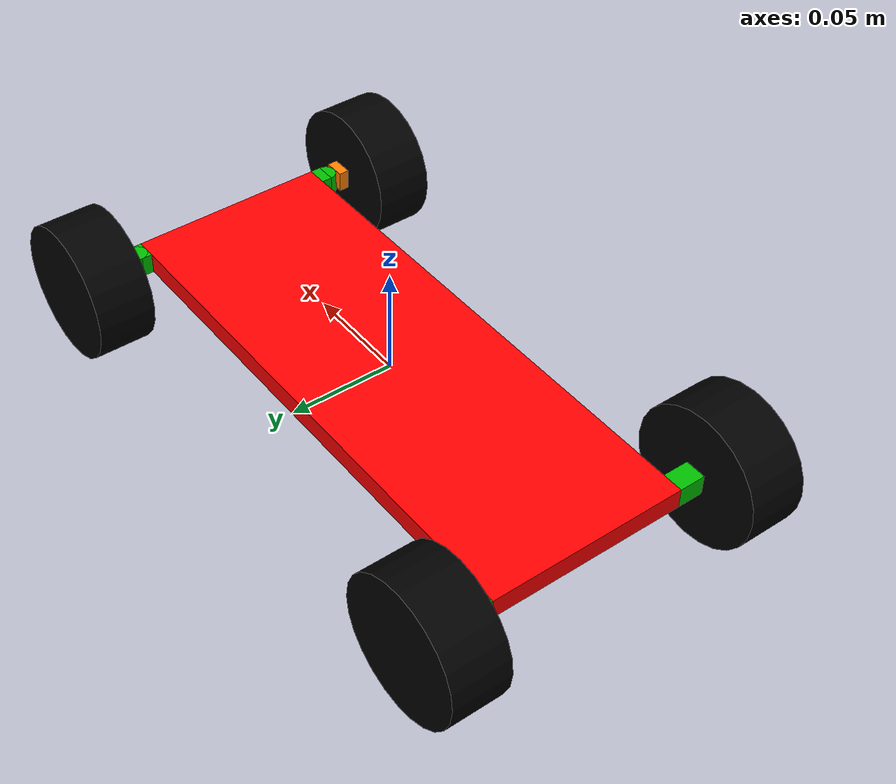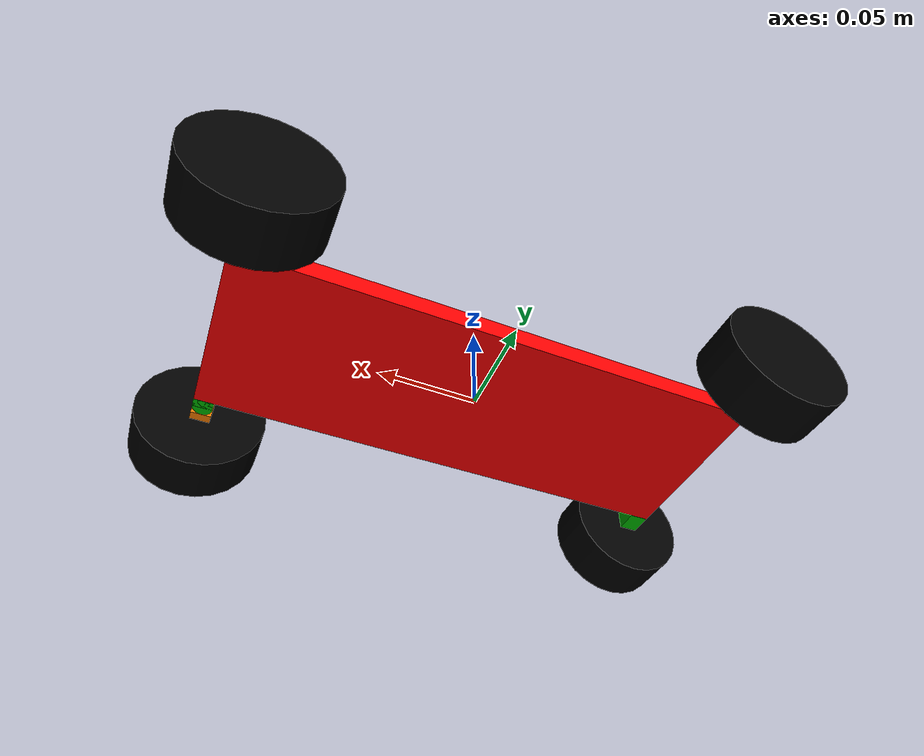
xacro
<?xml version="1.0"?>

<robot xmlns:xacro="http://www.ros.org/wiki/xacro" name="simple_ackermann" >

	<xacro:include filename="$(find ackermanndrive)/xacro/simple_ackermann_rear_wheel.xacro"/>
	<xacro:include filename="$(find ackermanndrive)/xacro/simple_ackermann_front_wheel.xacro"/>
	<xacro:include filename="$(find ackermanndrive)/xacro/simple_ackermann_plugin.xacro"/>

	<xacro:property name="height" value="0.01" />
	<xacro:property name="wheelbase" value="0.26" />
	<xacro:property name="track" value="0.1525" />
	<xacro:property name="wheeldiameter" value="0.065" />
	<!--xacro:property name="wheelwidth" value="0.001" /-->
	<xacro:property name="wheelwidth" value="0.0275" />

	<xacro:macro name="box_inertial" params="x y z mass">
		<inertial>
			<mass value="${mass}" />
			<origin xyz="0 0 0" />
			<inertia
				ixx="${0.0833333 * mass * (y*y + z*z)}" ixy="0.0" ixz="0.0"
				iyy="${0.0833333 * mass * (x*x + z*z)}" iyz="0.0"
				izz="${0.0833333 * mass * (x*x + y*y)}" />
		</inertial>
	</xacro:macro>

	<link name="base_link">
		<visual name="chassis_visual">
			<origin xyz="0.0 0.0 0.0" rpy="0.0 0.0 0.0"/>
			<geometry name="base_link_geomety">
				<box size="${wheelbase} ${track-wheelwidth-(3*height)} ${height}"/>
			</geometry>
			<material name="red">
				<color rgba="1.0 0.0 0.0 1.0"/>
			</material>
		</visual>
		<collision>
			<origin xyz="0.0 0.0 0.0" rpy="0.0 0.0 0.0"/>
			<geometry name="base_link_geomety">
				<box size="${wheelbase} ${track-wheelwidth-(3*height)} ${height}"/>
			</geometry>
		</collision>
		<xacro:box_inertial x="${wheelbase}" y="${track-wheelwidth-(3*height)}" z="${height}" mass="1.0" />
	</link>
	<gazebo reference="base_link">
		<material value="Gazebo/Red"/>
	</gazebo>

	<xacro:rear_wheel side="left" reflect="1.0" height="${height}" wheelbase="${wheelbase}" track="${track}" wheeldiameter="${wheeldiameter}" wheelwidth="${wheelwidth}"/>
	<xacro:rear_wheel side="right" reflect="-1.0" height="${height}" wheelbase="${wheelbase}" track="${track}" wheeldiameter="${wheeldiameter}" wheelwidth="${wheelwidth}"/>
	<xacro:front_wheel side="left" reflect="1.0" height="${height}" wheelbase="${wheelbase}" track="${track}" wheeldiameter="${wheeldiameter}" wheelwidth="${wheelwidth}"/>
	<xacro:front_wheel side="right" reflect="-1.0" height="${height}" wheelbase="${wheelbase}" track="${track}" wheeldiameter="${wheeldiameter}" wheelwidth="${wheelwidth}"/>

	<xacro:ackermanndrive_plugin/>

</robot>

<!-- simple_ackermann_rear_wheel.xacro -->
<robot xmlns:xacro="http://www.ros.org/wiki/xacro" name="simple_ackermann" >

	<xacro:macro name="default_inertial" params="mass">
		<inertial>
			<mass value="${mass}" />
			<inertia ixx="1.0" ixy="0.0" ixz="0.0" iyy="1.0" iyz="0.0" izz="1.0" />
		</inertial>
	</xacro:macro>

	<xacro:macro name="cylinder_inertial" params="radius length mass">
		<inertial>
			<mass value="${mass}" />
			<origin xyz="0 0 0" />
			<inertia
				ixx="${0.0833333 * mass * (3 * radius * radius + length * length)}" ixy="0.0" ixz="0.0"
				iyy="${0.0833333 * mass * (3 * radius * radius + length * length)}" iyz="0.0"
				izz="${0.5 * mass * radius * radius}" />
		</inertial>
	</xacro:macro>

	<xacro:macro name="cylinder_inertial_wheels" params="radius length mass">
		<inertial>
			<mass value="${mass}" />
			<origin xyz="0.0 ${reflect*wheelwidth/2} 0.0" rpy="${pi/2} 0.0 0.0"/>
			<inertia
				ixx="${0.0833333 * mass * (3 * radius * radius + length * length)}" ixy="0.0" ixz="0.0"
				iyy="${0.0833333 * mass * (3 * radius * radius + length * length)}" iyz="0.0"
				izz="${0.5 * mass * radius * radius}" />
		</inertial>
	</xacro:macro>

	<xacro:macro name="box_inertial" params="x y z mass">
		<inertial>
			<mass value="${mass}" />
			<origin xyz="0 0 0" />
			<inertia
				ixx="${0.0833333 * mass * (y*y + z*z)}" ixy="0.0" ixz="0.0"
				iyy="${0.0833333 * mass * (x*x + z*z)}" iyz="0.0"
				izz="${0.0833333 * mass * (x*x + y*y)}" />
		</inertial>
	</xacro:macro>

	<xacro:macro name="rear_wheel" params="side reflect height wheelbase track wheeldiameter wheelwidth">

		<joint name="base_link_to_${side}_rear_wheelmount" type="fixed">
			<origin xyz="${-(wheelbase/2-height/2)} ${reflect*(track-wheelwidth-3*height/2)/2} 0.0" rpy="0.0 0.0 0.0"/>
			<parent link="base_link"/>
			<child link="${side}_rear_wheelmount"/>
		</joint>

		<link name="${side}_rear_wheelmount">
			<visual>
				<origin xyz="0.0 0.0 0.0" rpy="0.0 0.0 0.0"/>
				<geometry name="wheelmount_geometry">
					<box size="${height} ${3*height/2} ${height}" />
				</geometry>
				<material name="green">
					<color rgba="0.0 0.75 0.0 1.0"/>
				</material>
			</visual>
			<collision>
				<origin xyz="0.0 0.0 0.0" rpy="0.0 0.0 0.0"/>
				<geometry name="wheelmount_geometry">
					<box size="${height} ${3*height/2} ${height}" />
				</geometry>
			</collision>
		<xacro:box_inertial x="${height}" y="${3*height/2}" z ="${height}" mass="0.015"/>
		</link>
		<gazebo reference="${side}_rear_wheelmount">
			<material value="Gazebo/Red"/>
		</gazebo>

		<joint name="${side}_rear_wheel_to_mount" type="continuous">
			<axis xyz="0.0 1.0 0.0"/>
			<origin xyz="0.0 ${reflect*height/2} 0.0" rpy="0.0 0.0 0.0"/>
			<parent link="${side}_rear_wheelmount"/>
			<child link="${side}_rear_wheel"/>
		</joint>

		<link name="${side}_rear_wheel">
			<visual>
				<origin xyz="0.0 ${reflect*wheelwidth/2} 0.0" rpy="${pi/2} 0.0 0.0"/>
				<geometry name="wheel_geom">
					<cylinder radius="${wheeldiameter/2}" length="${wheelwidth}" />
				</geometry>
				<material name="black">
					<color rgba="0.0 0.0 0.0 1.0"/>
				</material>
			</visual>
			<collision>
				<origin xyz="0.0 ${reflect*wheelwidth/2} 0.0" rpy="${pi/2} 0.0 0.0"/>
				<geometry name="wheel_geom">
					<cylinder radius="${wheeldiameter/2}" length="${wheelwidth}" />
				</geometry>
			</collision>
			<xacro:cylinder_inertial_wheels radius="${wheeldiameter/2}" length="${wheelwidth}" mass="0.01"/>
		</link>
		<gazebo reference="${side}_rear_wheel">
			<mu1>10.0</mu1>
			<mu2>10.0</mu2>
			<kp>1000000.0</kp>
			<kd>10.0</kd>
			<material value="Gazebo/Black"/>
		</gazebo>
	</xacro:macro>

</robot>

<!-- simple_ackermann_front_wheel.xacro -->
<robot xmlns:xacro="http://www.ros.org/wiki/xacro">

	<xacro:macro name="default_inertial" params="mass">
		<inertial>
			<mass value="${mass}" />
			<inertia ixx="0.001" ixy="0.0" ixz="0.0" iyy="0.001" iyz="0.0" izz="0.001" />
		</inertial>
	</xacro:macro>

	<xacro:macro name="cylinder_inertial" params="radius length mass">
		<inertial>
			<mass value="${mass}" />
			<origin xyz="0.0 0.0 0.0" rpy="0.0 0.0 0.0"/>
			<inertia
				ixx="${0.0833333 * mass * (3 * radius * radius + length * length)}" ixy="0.0" ixz="0.0"
				iyy="${0.0833333 * mass * (3 * radius * radius + length * length)}" iyz="0.0"
				izz="${0.5 * mass * radius * radius}" />
		</inertial>
	</xacro:macro>

	<xacro:macro name="cylinder_inertial_wheels" params="radius length mass">
		<inertial>
			<mass value="${mass}" />
			<origin xyz="0.0 ${reflect*wheelwidth/2} 0.0" rpy="${pi/2} 0.0 0.0"/>
			<inertia
				ixx="${0.0833333 * mass * (3 * radius * radius + length * length)}" ixy="0.0" ixz="0.0"
				iyy="${0.0833333 * mass * (3 * radius * radius + length * length)}" iyz="0.0"
				izz="${0.5 * mass * radius * radius}" />
		</inertial>
	</xacro:macro>

	<xacro:macro name="box_inertial" params="x y z mass">
		<inertial>
			<mass value="${mass}" />
			<origin xyz="0 0 0" />
			<inertia
				ixx="${0.0833333 * mass * (y*y + z*z)}" ixy="0.0" ixz="0.0"
				iyy="${0.0833333 * mass * (x*x + z*z)}" iyz="0.0"
				izz="${0.0833333 * mass * (x*x + y*y)}" />
		</inertial>
	</xacro:macro>

	<xacro:macro name="box_inertial_kingpin" params="x y z mass">
		<inertial>
			<mass value="${mass}" />
			<origin xyz="0.0 ${reflect*3*height/4} 0.0" rpy="0.0 0.0 0.0"/>
			<inertia
				ixx="${0.0833333 * mass * (y*y + z*z)}" ixy="0.0" ixz="0.0"
				iyy="${0.0833333 * mass * (x*x + z*z)}" iyz="0.0"
				izz="${0.0833333 * mass * (x*x + y*y)}" />
		</inertial>
	</xacro:macro>

	<xacro:macro name="cylinder_inertial_with_origin" params="radius length mass *origin">
		<inertial>
			<mass value="${mass}" />
			<xacro:insert_block name="origin" />
			<inertia
				ixx="${0.0833333 * mass * (3 * radius * radius + length * length)}" ixy="0.0" ixz="0.0"
				iyy="${0.0833333 * mass * (3 * radius * radius + length * length)}" iyz="0.0"
				izz="${0.5 * mass * radius * radius}" />
		</inertial>
	</xacro:macro>

	<xacro:macro name="box_inertial_with_origin" params="x y z mass *origin">
		<inertial>
			<mass value="${mass}" />
			<xacro:insert_block name="origin" />
			<inertia
				ixx="${0.0833333 * mass * (y*y + z*z)}" ixy="0.0" ixz="0.0"
				iyy="${0.0833333 * mass * (x*x + z*z)}" iyz="0.0"
				izz="${0.0833333 * mass * (x*x + y*y)}" />
		</inertial>
	</xacro:macro>

	<xacro:macro name="front_wheel" params="side reflect height wheelbase track wheeldiameter wheelwidth">

		<joint name="base_link_to_${side}_front_wheelmount_box" type="fixed">
			<origin xyz="${(wheelbase/2-height/2)} ${reflect*(track-wheelwidth-5*height/2)/2} 0.0" rpy="0.0 0.0 0.0"/>
			<parent link="base_link"/>
			<child link="${side}_front_wheelmount_box"/>
		</joint>

		<link name="${side}_front_wheelmount_box">
			<visual>
				<origin xyz="0.0 0.0 0.0" rpy="0.0 0.0 0.0"/>
				<geometry name="wheelmount_geometry">
					<box size="${height} ${height/2} ${height}" />
				</geometry>
				<material name="green">
					<color rgba="0.0 0.75 0.0 1.0"/>
				</material>
			</visual>
			<collision>
				<origin xyz="0.0 0.0 0.0" rpy="0.0 0.0 0.0"/>
				<geometry name="wheelmount_geometry">
					<box size="${height} ${height/2} ${height}" />
				</geometry>
			</collision>
			<xacro:box_inertial x="${height}" y="${height/2}" z="${height}" mass="0.005"/>
		</link>
		<gazebo reference="${side}_front_wheelmount_box">
			<material value="Gazebo/Red"/>
		</gazebo>

		<joint name="${side}_front_wheelmount_box_to_${side}_front_wheelmount_cylinder" type="fixed">
			<origin xyz="0.0 ${reflect*height/4} 0.0" rpy="0.0 0.0 0.0"/>
			<parent link="${side}_front_wheelmount_box"/>
			<child link="${side}_front_wheelmount_cylinder"/>
		</joint>

		<link name="${side}_front_wheelmount_cylinder">
			<visual>
				<origin xyz="0.0 0.0 0.0" rpy="0.0 0.0 0.0"/>
				<geometry name="wheelmount_geometry">
					<cylinder radius="${height/2}" length="${height}" />
				</geometry>
				<material name="green">
					<color rgba="0.0 0.75 0.0 1.0"/>
				</material>
			</visual>
			<collision>
				<origin xyz="0.0 0.0 0.0" rpy="0.0 0.0 0.0"/>
				<geometry name="wheelmount_geometry">
					<cylinder radius="${height/2}" length="${height}" />
				</geometry>
			</collision>
			<xacro:cylinder_inertial radius="${height/2}" length="${height}" mass="0.005"/>
		</link>
		<gazebo reference="${side}_front_wheelmount_cylinder">
			<material value="Gazebo/Red"/>
		</gazebo>

		<joint name="${side}_front_wheelmount_cylinder_to_${side}_kingpin" type="revolute">
		  	<axis xyz="0.0 0.0 1.0"/>
		  	<origin rpy="0.0 0.0 0.0" xyz="0.0 0.0 0.0"/>
			<parent link="${side}_front_wheelmount_cylinder"/>
			<child link="${side}_kingpin"/>
			<limit lower="-0.41" upper="0.41" effort="100" velocity="100"/>
			<joint_properties damping="1.0" friction="0.0"/>
		</joint>
		<gazebo reference="${side}_front_wheelmount_cylinder_to_${side}_kingpin">
		</gazebo>

		<link name="${side}_kingpin">
			<visual>
				<origin xyz="0.0 ${reflect*3*height/4} 0.0" rpy="0.0 0.0 0.0"/>
				<geometry name="kingpin_geometry">
					<box size="${height} ${height/2} ${height}" />
				</geometry>
				<material name="orange">
					<color rgba="1.0 0.5 0.0 1.0"/>
				</material>
			</visual>
			<collision>
				<origin xyz="0.0 ${reflect*3*height/4} 0.0" rpy="0.0 0.0 0.0"/>
				<geometry name="kingpin_geometry">
					<box size="${height} ${height/2} ${height}" />
				</geometry>
			</collision>
			<xacro:box_inertial_kingpin x="${height}" y="${height/2}" z="${height}" mass="0.005"/>
		</link>
		<gazebo reference="${side}_kingpin">
			<material value="Gazebo/Orange"/>
		</gazebo>

		<joint name="${side}_kingpin_to_${side}_front_wheel" type="continuous">
			<axis xyz="0.0 1.0 0.0"/>
			<origin xyz="0.0 ${reflect*height} 0.0" rpy="0.0 0.0 0.0"/>
			<parent link="${side}_kingpin"/>
			<child link="${side}_front_wheel"/>
		</joint>

		<link name="${side}_front_wheel">
			<visual>
				<origin xyz="0.0 ${reflect*wheelwidth/2} 0.0" rpy="${pi/2} 0.0 0.0"/>
				<geometry name="wheel_geom">
					<cylinder radius="${wheeldiameter/2}" length="${wheelwidth}" />
				</geometry>
				<material name="black">
					<color rgba="0.0 0.0 0.0 1.0"/>
				</material>
			</visual>
			<collision>
				<origin xyz="0.0 ${reflect*wheelwidth/2} 0.0" rpy="${pi/2} 0.0 0.0"/>
				<geometry name="wheel_geom">
					<cylinder radius="${wheeldiameter/2}" length="${wheelwidth}" />
				</geometry>
			</collision>
			<xacro:cylinder_inertial_wheels radius="${wheeldiameter/2}" length="${wheelwidth}" mass="0.01"/>
		</link>
		<gazebo reference="${side}_front_wheel">
			<mu1>10.0</mu1>		<!-- friction coeffciant 1 -->
			<mu2>10.0</mu2>		<!-- friction coeffciant 2 -->
			<kp>100000.0</kp>	<!-- contact stiffness 	-->
			<kd>10.0</kd>		<!-- cantact damping 	-->
			<material value="Gazebo/Black"/>
		</gazebo>

	</xacro:macro>

</robot>
